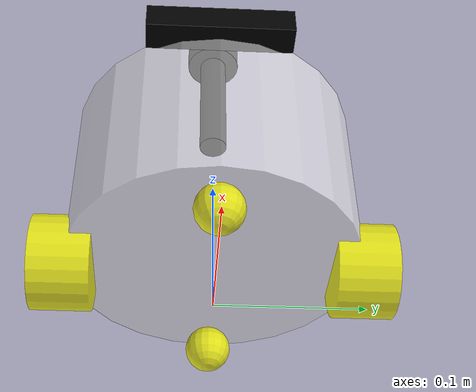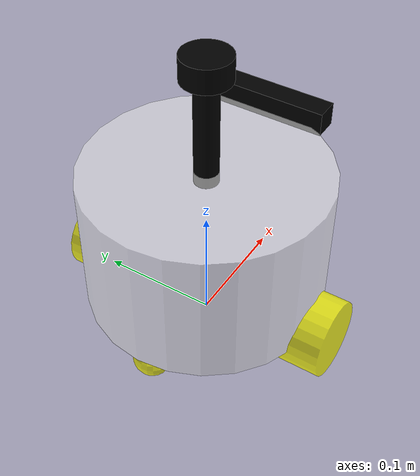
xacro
<?xml version="1.0"?>
<robot xmlns:xacro="http://www.ros.org/wiki/xacro" name="fishbot_robot">
<!-- 基础部分 base_link -->
<xacro:include filename="$(find urdf_description)/urdf/fishbot/base.urdf.xacro" />
<!-- 传感器部分 -->
<xacro:include filename="$(find urdf_description)/urdf/fishbot/sensor/camera.urdf.xacro" />
<xacro:include filename="$(find urdf_description)/urdf/fishbot/sensor/imu.urdf.xacro" />
<xacro:include filename="$(find urdf_description)/urdf/fishbot/sensor/laser.urdf.xacro" />
<!-- 执行器，轮子 -->
<xacro:include filename="$(find urdf_description)/urdf/fishbot/actuator/wheel.urdf.xacro" />
<xacro:include filename="$(find urdf_description)/urdf/fishbot/actuator/caster.urdf.xacro" />

<!-- 插件 -->
<xacro:include filename="$(find urdf_description)/urdf/fishbot/plugins/gazebo_control_plugin.xacro" />
<xacro:include filename="$(find urdf_description)/urdf/fishbot/plugins/gazebo_sensor_plugin.xacro" />

<xacro:base_xacro length="0.12" radius="0.1"/>
<xacro:imu_xacro xyz="0.0 0.0 0.02" />
<xacro:camera_xacro xyz="0.10 0.0 0.065" />
<xacro:laser_xacro xyz="0.0 0.0 0.10" />
<xacro:wheel_xacro wheel_name="left_wheel" xyz="0.0 0.10 -0.06" />
<xacro:wheel_xacro wheel_name="right_wheel" xyz="0.0 -0.10 -0.06" />
<xacro:caster_xacro caster_name="front_caster" xyz="0.08 0.0 -0.076" />
<xacro:caster_xacro caster_name="back_caster" xyz="-0.08 0.0 -0.076" />

<xacro:gazebo_control_plugin  />
<xacro:gazebo_sensor_plugin  />
</robot>

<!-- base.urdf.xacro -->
<robot xmlns:xacro="http://www.ros.org/wiki/xacro">

    <xacro:include filename="$(find urdf_description)/urdf/fishbot/common_inertia.xacro" />
    <xacro:macro name="base_xacro" params="length radius">
        <link name="base_footprint_link" />
        <!-- 定义机器人身体部分 -->
        <link name="base_link">
            <!-- 定义外观描述 -->
            <visual>
                <!-- 沿着自己的几何中心的偏移和旋转 -->
                <origin xyz="0 0 0" rpy="0 0 0" />
                <!-- 几何形状 -->
                <geometry>
                    <!-- 圆柱体 半径 0.10，高度0.12 -->
                    <cylinder length="${length}" radius="${radius}" />
                </geometry>
                <!-- 定义材质和颜色 0.5半透明-->
                <material name="white">
                    <color rgba="1.0 1.0 1.0 0.5" />
                </material>
            </visual>
             <!--碰撞属性  -->
             <collision>
                <origin xyz="0 0 0" rpy="0 0 0" />
                <!-- 几何形状 -->
                <geometry>
                    <!-- 圆柱体 半径 0.10，高度0.12 -->
                    <cylinder length="${length}" radius="${radius}" />
                </geometry>
                <!-- 定义材质和颜色 0.5半透明-->
                <material name="white">
                    <color rgba="1.0 1.0 1.0 0.5" />
                </material>
            </collision>
            <xacro:cylinder_inertia m="1.0" r="${radius}" h="${length}" />
        </link>

        <joint name="base_footprint2base_link" type="fixed">
            <origin xyz="0 0 ${length/2+0.032-0.001}" rpy="0 0 0" />
            <parent link="base_footprint_link" />
            <child link="base_link" />
        </joint>
    </xacro:macro>
</robot>

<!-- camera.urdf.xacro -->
<robot xmlns:xacro="http://www.ros.org/wiki/xacro" >
    <xacro:include filename="$(find urdf_description)/urdf/fishbot/common_inertia.xacro" />
    <xacro:macro name="camera_xacro" params="xyz">
        <!-- 机器人的camera部件，惯性测量单元 -->
        <link name="camera_link">
            <!-- 定义外观描述 -->
            <visual>
                <!-- 沿着自己的几何中心的偏移和旋转 -->
                <origin xyz="0 0 0" rpy="0 0 0" />
                <!-- 几何形状 -->
                <geometry>
                <!-- box -->
                    <box size="0.02 0.10 0.02" />
                </geometry>
                <!-- 定义材质和颜色 0.5半透明-->
                <material name="black">
                    <color rgba="0.0 0.0 0.0 1" />
                </material>
            </visual>
            <collision>
                <!-- 沿着自己的几何中心的偏移和旋转 -->
                <origin xyz="0 0 0" rpy="0 0 0" />
                <!-- 几何形状 -->
                <geometry>
                <!-- box -->
                    <box size="0.02 0.10 0.02" />
                </geometry>
                <!-- 定义材质和颜色 0.5半透明-->
                <material name="black">
                    <color rgba="0.0 0.0 0.0 1" />
                </material>
            </collision>
            <xacro:box_inertia m="0.1" w="0.02" h="0.10" d="0.02" />
        </link>

        <link name="camera_optical_link"></link>

        <!-- 定义关节 -->
        <joint name="camera_joint" type="fixed">
            <!-- 关节连接的父链接 -->
            <parent link="base_link" />
            <!-- 关节连接的子链接 -->
            <child link="camera_link" />
            <!-- 关节的位置和旋转 -->
            <origin xyz="${xyz}" rpy="0 0 0" />
        </joint>

        <!-- 定义关节 -->
        <joint name="camera_optical_joint" type="fixed">
            <!-- 关节连接的父链接 -->
            <parent link="camera_link" />
            <!-- 关节连接的子链接 -->
            <child link="camera_optical_link" />
            <!-- 关节的位置和旋转 -->
            <origin xyz="0 0 0" rpy="${-pi/2} 0 ${-pi/2}" />
        </joint>
    </xacro:macro>
</robot>

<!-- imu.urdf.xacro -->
<robot xmlns:xacro="http://www.ros.org/wiki/xacro" >
    <xacro:include filename="$(find urdf_description)/urdf/fishbot/common_inertia.xacro" />
    <xacro:macro name="imu_xacro" params="xyz">
        <!-- 机器人的IMU部件，惯性测量单元 -->
        <link name="imu_link">
            <!-- 定义外观描述 -->
            <visual>
                <!-- 沿着自己的几何中心的偏移和旋转 -->
                <origin xyz="0 0 0" rpy="0 0 0" />
                <!-- 几何形状 -->
                <geometry>
                <!-- box -->
                    <box size="0.02 0.02 0.02" />
                </geometry>
                <!-- 定义材质和颜色 0.5半透明-->
                <material name="white">
                    <color rgba="0.0 0.0 0.0 0.5" />
                </material>
            </visual>
            <collision>
                <!-- 沿着自己的几何中心的偏移和旋转 -->
                <origin xyz="0 0 0" rpy="0 0 0" />
                <!-- 几何形状 -->
                <geometry>
                <!-- box -->
                    <box size="0.02 0.02 0.02" />
                </geometry>
                <!-- 定义材质和颜色 0.5半透明-->
                <material name="white">
                    <color rgba="0.0 0.0 0.0 0.5" />
                </material>
            </collision>
            <xacro:box_inertia m="0.05" w="0.02" h="0.02" d="0.02" />
        </link>

        <!-- 定义关节 -->
        <joint name="imu_joint" type="fixed">
            <!-- 关节连接的父链接 -->
            <parent link="base_link" />
            <!-- 关节连接的子链接 -->
            <child link="imu_link" />
            <!-- 关节的位置和旋转 -->
            <origin xyz="${xyz}" rpy="0 0 0" />
        </joint>
    </xacro:macro>
</robot>

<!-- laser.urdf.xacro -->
<robot xmlns:xacro="http://www.ros.org/wiki/xacro" >
    <xacro:include filename="$(find urdf_description)/urdf/fishbot/common_inertia.xacro" />
    <xacro:macro name="laser_xacro" params="xyz">
        <!-- 雷达支撑杆 -->
        <link name="laser_cylinder_link">
            <!-- 定义外观描述 -->
            <visual>
                <!-- 沿着自己的几何中心的偏移和旋转 -->
                <origin xyz="0 0 0" rpy="0 0 0" />
                <!-- 几何形状 -->
                <geometry>
                <!-- cylinder -->
                    <cylinder radius="0.01" length="0.1" />
                </geometry>
                <!-- 定义材质和颜色 0.5半透明-->
                <material name="black">
                    <color rgba="0.0 0.0 0.0 1.0" />
                </material>
            </visual>
            <collision>
                <!-- 沿着自己的几何中心的偏移和旋转 -->
                <origin xyz="0 0 0" rpy="0 0 0" />
                <!-- 几何形状 -->
                <geometry>
                <!-- cylinder -->
                    <cylinder radius="0.01" length="0.1" />
                </geometry>
                <!-- 定义材质和颜色 0.5半透明-->
                <material name="black">
                    <color rgba="0.0 0.0 0.0 1.0" />
                </material>
            </collision>
            <xacro:cylinder_inertia m="0.05" r="0.01" h="0.1" />
        </link>

        <!-- 雷达 -->
        <link name="laser_link">
            <!-- 定义外观描述 -->
            <visual>
                <!-- 沿着自己的几何中心的偏移和旋转 -->
                <origin xyz="0 0 0" rpy="0 0 0" />
                <!-- 几何形状 -->
                <geometry>
                <!-- cylinder -->
                    <cylinder radius="0.02" length="0.02" />
                </geometry>
                <!-- 定义材质和颜色 0.5半透明-->
                <material name="black">
                    <color rgba="0.0 0.0 0.0 1.0" />
                </material>
            </visual>
            <collision>
                 <!-- 沿着自己的几何中心的偏移和旋转 -->
                <origin xyz="0 0 0" rpy="0 0 0" />
                <!-- 几何形状 -->
                <geometry>
                <!-- cylinder -->
                    <cylinder radius="0.02" length="0.02" />
                </geometry>
                <!-- 定义材质和颜色 0.5半透明-->
                <material name="black">
                    <color rgba="0.0 0.0 0.0 1.0" />
                </material>
            </collision>
            <xacro:cylinder_inertia m="0.10" r="0.02" h="0.02" />
        </link>

        <!-- 定义关节 -->
        <joint name="laser_joint" type="fixed">
            <!-- 关节连接的父链接 -->
            <parent link="laser_cylinder_link" />
            <!-- 关节连接的子链接 -->
            <child link="laser_link" />
            <!-- 关节的位置和旋转 -->
            <origin xyz="0.0 0.0 0.05" rpy="0 0 0" />
        </joint>

        <joint name="laser_cylinder_joint" type="fixed">
            <!-- 关节连接的父链接 -->
            <parent link="base_link" />
            <!-- 关节连接的子链接 -->
            <child link="laser_cylinder_link" />
            <!-- 关节的位置和旋转 -->
            <origin xyz="${xyz}" rpy="0 0 0" />
        </joint>

        <gazebo reference="laser_link">
            <material>Gazebo/Black</material>
        </gazebo>
        <gazebo reference="laser_cylinder_link">
            <material>Gazebo/Black</material>
        </gazebo>
    </xacro:macro>
</robot>

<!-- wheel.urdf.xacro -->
<robot xmlns:xacro="http://www.ros.org/wiki/xacro" >
    <xacro:include filename="$(find urdf_description)/urdf/fishbot/common_inertia.xacro" />
    <xacro:macro name="wheel_xacro" params="wheel_name xyz">
        <!-- 机器人的wheel部件，惯性测量单元 -->
        <link name="${wheel_name}_link">
            <!-- 定义外观描述 -->
            <visual>
                <!-- 沿着自己的几何中心的偏移和旋转 -->
                <origin xyz="0 0 0" rpy="1.57079 0 0" />
                <!-- 几何形状 -->
                <geometry>
                <!-- cylinder -->
                    <cylinder radius="0.032" length="0.04" />
                </geometry>
                <!-- 定义材质和颜色 0.5半透明-->
                <material name="yellow">
                    <color rgba="1.0 1.0 0.0 0.8" />
                </material>
            </visual>
             <collision>
                <!-- 沿着自己的几何中心的偏移和旋转 -->
                <origin xyz="0 0 0" rpy="1.57079 0 0" />
                <!-- 几何形状 -->
                <geometry>
                <!-- cylinder -->
                    <cylinder radius="0.032" length="0.04" />
                </geometry>
                <!-- 定义材质和颜色 0.5半透明-->
                <material name="yellow">
                    <color rgba="1.0 1.0 0.0 0.8" />
                </material>
            </collision>
            <xacro:cylinder_inertia m="0.05" r="0.032" h="0.04" />
        </link>

        <!-- 定义关节 -->
        <joint name="${wheel_name}_joint" type="continuous">
            <!-- 关节连接的父链接 -->
            <parent link="base_link" />
            <!-- 关节连接的子链接 -->
            <child link="${wheel_name}_link" />
            <!-- 关节的位置和旋转 -->
            <origin xyz="${xyz}" rpy="0 0 0" />
            <!-- 围绕y轴旋转 -->
            <axis xyz="0.0 1 0.0"/>
        </joint>

        <gazebo reference="${wheel_name}_link">
            <!-- 摩擦力 -->
            <mu1 value="20"/>
            <mu2 value="20"/>
            <kp value="1000000000.0"/>
            <kd value="1.0"/>
        </gazebo>
    </xacro:macro>
</robot>

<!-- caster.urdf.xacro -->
<robot xmlns:xacro="http://www.ros.org/wiki/xacro" >
    <xacro:include filename="$(find urdf_description)/urdf/fishbot/common_inertia.xacro" />
    <xacro:macro name="caster_xacro" params="caster_name xyz">
        <!-- 机器人的caster部件，惯性测量单元 -->
        <link name="${caster_name}_link">
            <!-- 定义外观描述 -->
            <visual>
                <!-- 沿着自己的几何中心的偏移和旋转 -->
                <origin xyz="0 0 0" rpy="0 0 0" />
                <!-- 几何形状 -->
                <geometry>
                <!-- shpere -->
                    <sphere radius="0.016"/>
                </geometry>
                <!-- 定义材质和颜色 0.5半透明-->
                <material name="yellow">
                    <color rgba="1.0 1.0 0.0 0.8" />
                </material>
            </visual>
            <!-- 定义惯性参数 -->
            <collision>
                <!-- 沿着自己的几何中心的偏移和旋转 -->
                <origin xyz="0 0 0" rpy="0 0 0" />
                <!-- 几何形状 -->
                <geometry>
                <!-- shpere -->
                    <sphere radius="0.016"/>
                </geometry>
                <!-- 定义材质和颜色 0.5半透明-->
                <material name="yellow">
                    <color rgba="1.0 1.0 0.0 0.8" />
                </material>
            </collision>
            <xacro:sphere_inertia m="0.01" r="0.016" />
        </link>

        <!-- 定义关节 -->
        <joint name="${caster_name}_joint" type="fixed">
            <!-- 关节连接的父链接 -->
            <parent link="base_link" />
            <!-- 关节连接的子链接 -->
            <child link="${caster_name}_link" />
            <!-- 关节的位置和旋转 -->
            <origin xyz="${xyz}" rpy="0 0 0" />
            <!-- 围绕y轴旋转 -->
        </joint>
        <gazebo reference="${caster_name}_link">
            <material>Gazebo/Black</material>
            <!-- 摩擦力 -->
            <mu1 value="0"/>
            <mu2 value="0"/>
            <kp value="1000000000.0"/>
            <kd value="1.0"/>
        </gazebo>
    </xacro:macro>
</robot>
